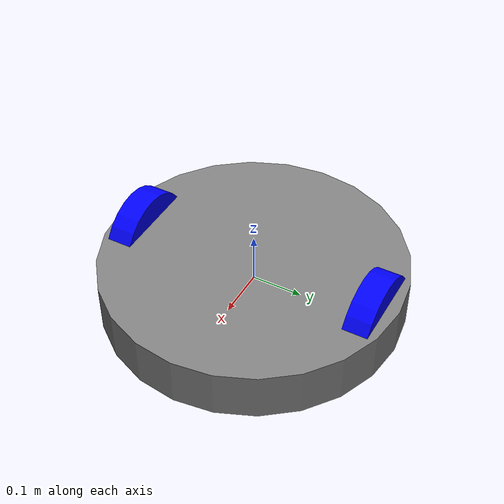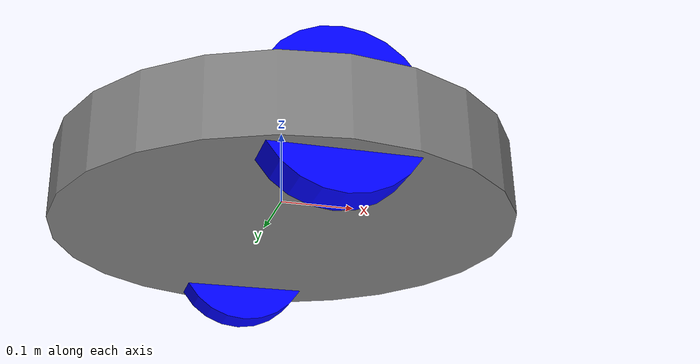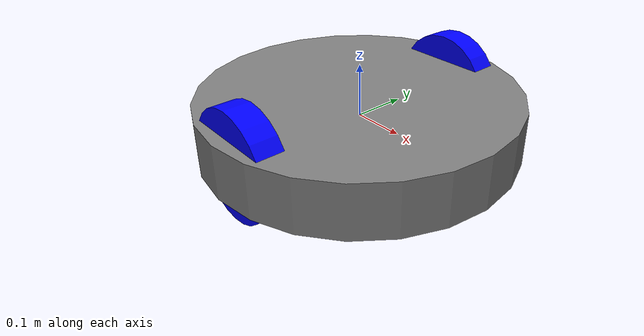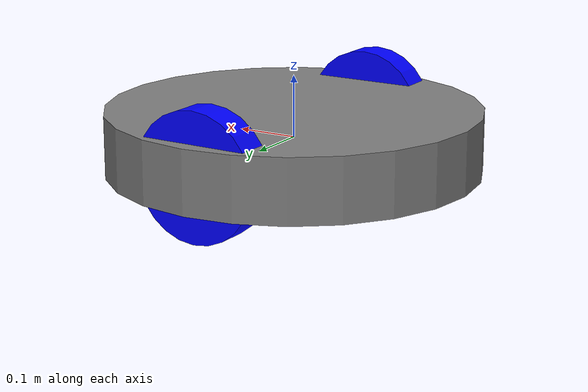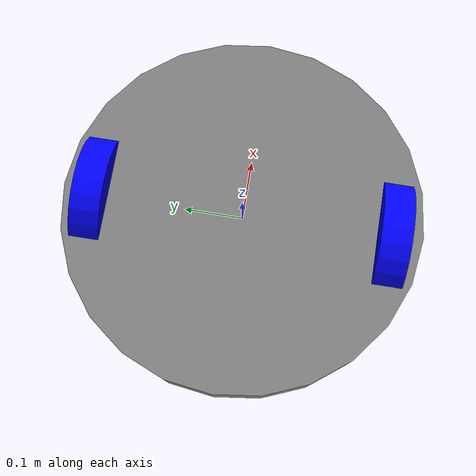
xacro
<?xml version="1.0"?>
<robot xmlns:xacro="http://www.ros.org/wiki/xacro" name="macro_test">
  <!-- Xacro with macros -->
  <xacro:macro name="cylinder_link" params="name radius length mass color_r color_g color_b">
    <link name="${name}">
      <visual>
        <origin xyz="0 0 0" rpy="0 0 0"/>
        <geometry>
          <cylinder radius="${radius}" length="${length}"/>
        </geometry>
        <material name="${name}_material">
          <color rgba="${color_r} ${color_g} ${color_b} 1"/>
        </material>
      </visual>
      <collision>
        <origin xyz="0 0 0" rpy="0 0 0"/>
        <geometry>
          <cylinder radius="${radius}" length="${length}"/>
        </geometry>
      </collision>
      <inertial>
        <mass value="${mass}"/>
        <inertia ixx="${mass * (3 * radius * radius + length * length) / 12}"
                 ixy="0" ixz="0"
                 iyy="${mass * (3 * radius * radius + length * length) / 12}"
                 iyz="0"
                 izz="${mass * radius * radius / 2}"/>
      </inertial>
    </link>
  </xacro:macro>

  <xacro:cylinder_link name="base_link" radius="0.3" length="0.1" mass="2.0" color_r="0.5" color_g="0.5" color_b="0.5"/>
  <xacro:cylinder_link name="wheel_left" radius="0.1" length="0.05" mass="0.5" color_r="0" color_g="0" color_b="1"/>
  <xacro:cylinder_link name="wheel_right" radius="0.1" length="0.05" mass="0.5" color_r="0" color_g="0" color_b="1"/>

  <joint name="left_wheel_joint" type="continuous">
    <parent link="base_link"/>
    <child link="wheel_left"/>
    <origin xyz="0 0.25 0" rpy="1.57079 0 0"/>
    <axis xyz="0 0 1"/>
  </joint>

  <joint name="right_wheel_joint" type="continuous">
    <parent link="base_link"/>
    <child link="wheel_right"/>
    <origin xyz="0 -0.25 0" rpy="1.57079 0 0"/>
    <axis xyz="0 0 1"/>
  </joint>
</robot>
